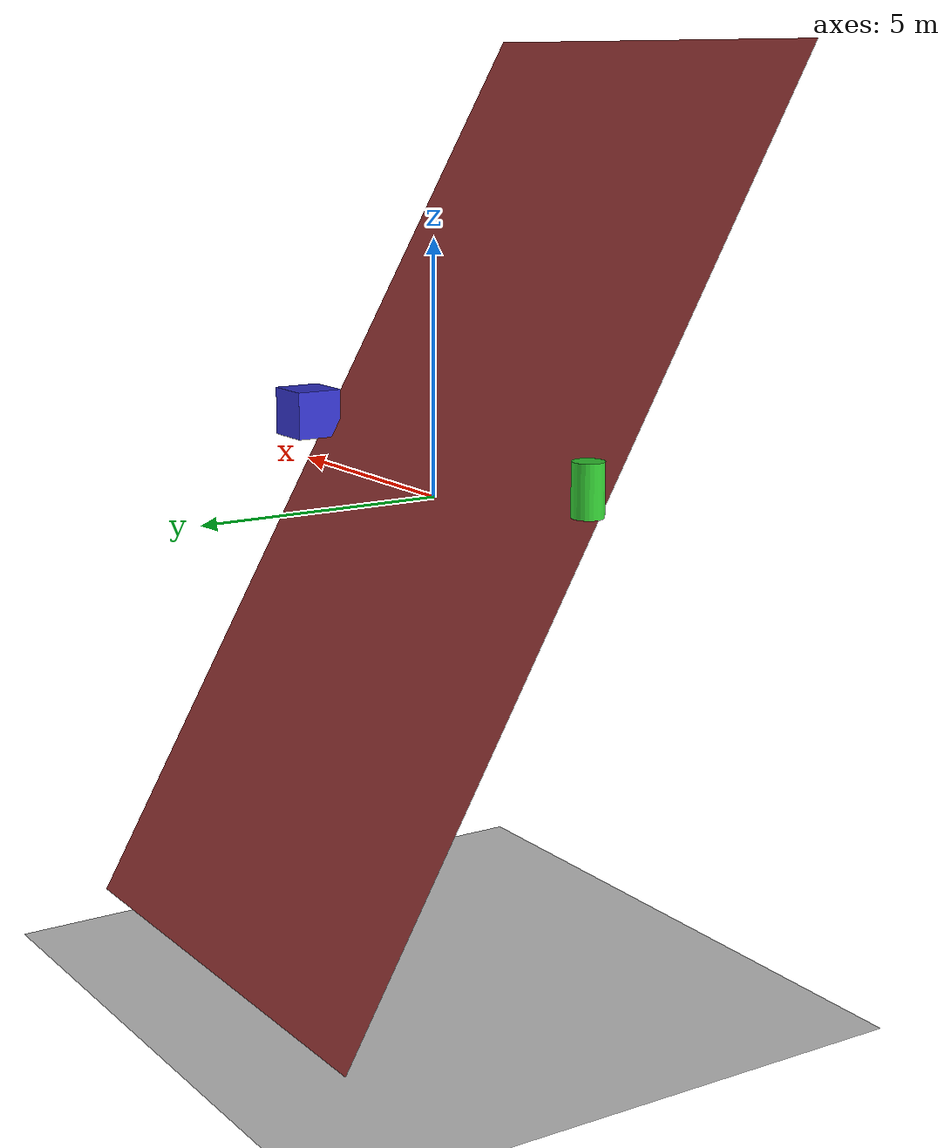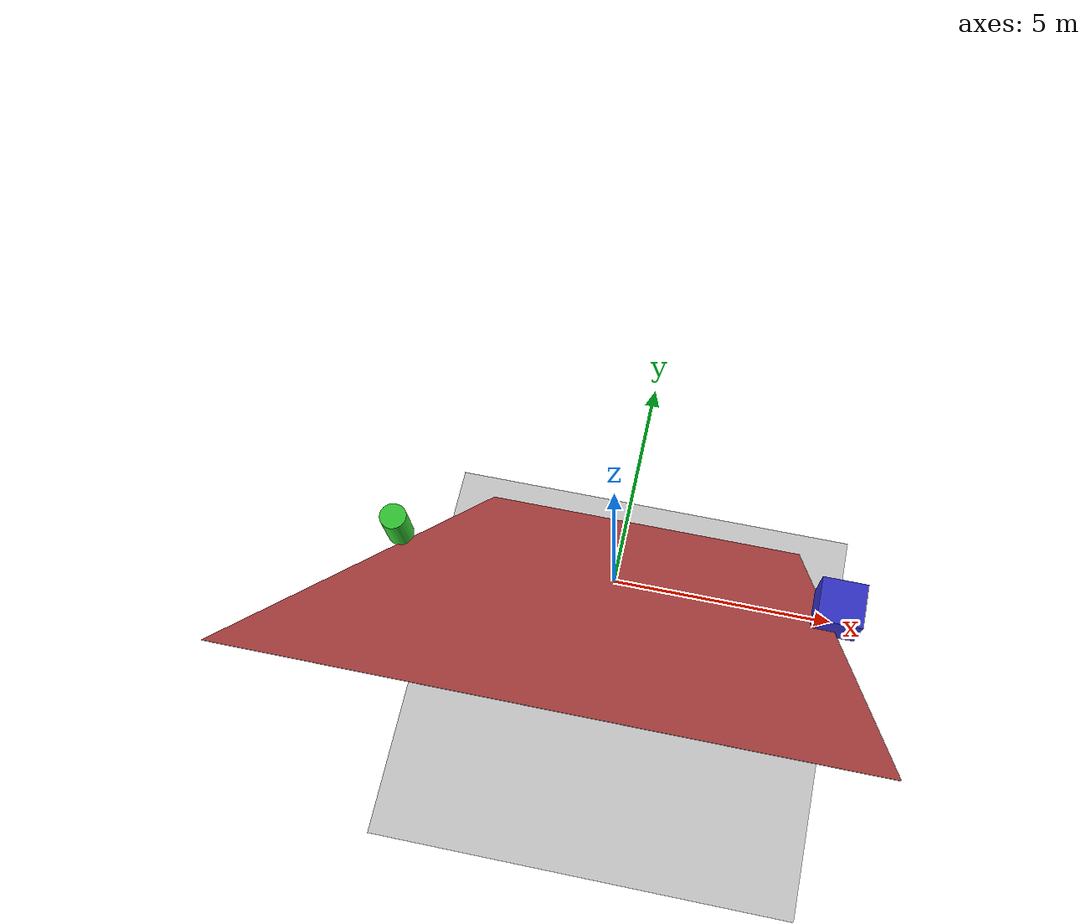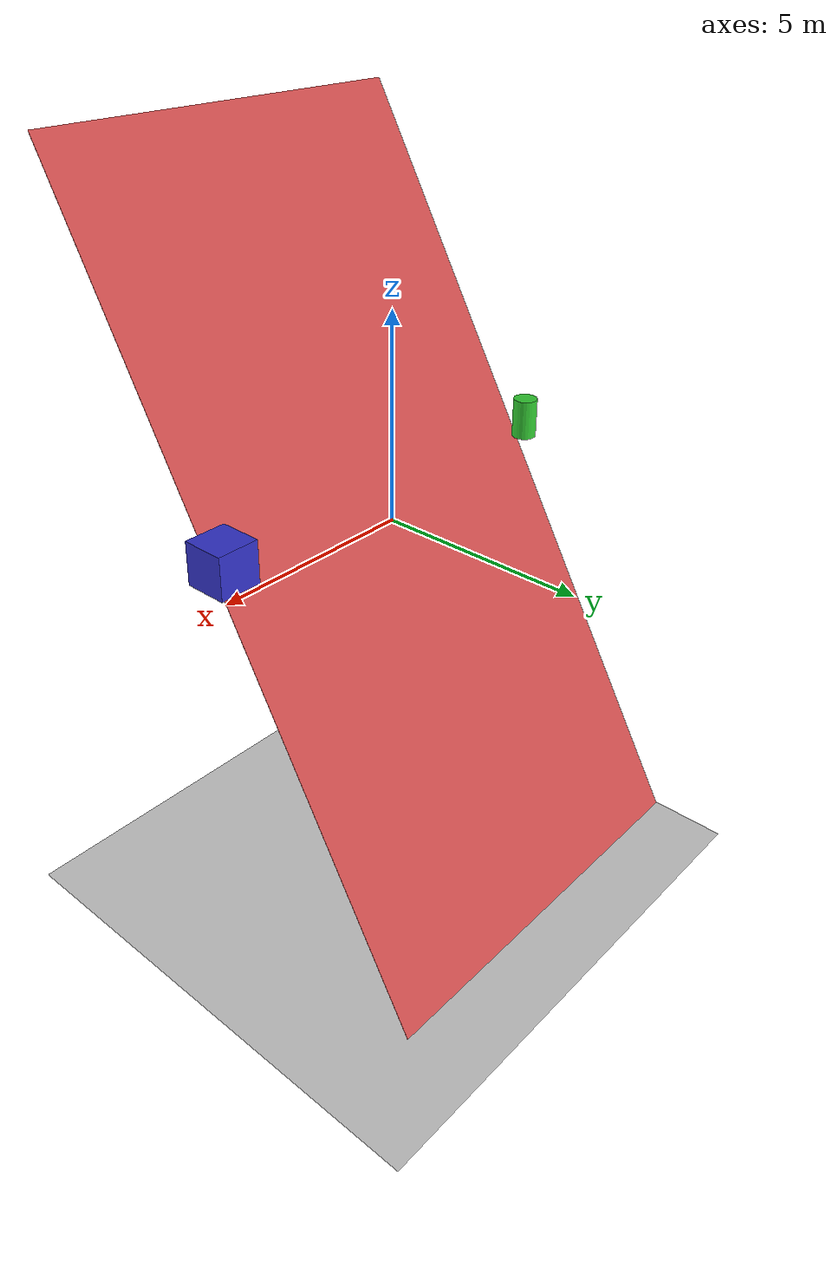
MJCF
<mujoco>
  <option gravity="0 0 -9.81"/>
  <worldbody>
    <!-- Inclined Plane -->
    <body name="incline" pos="0 0 0">
      <geom type="plane" size="5 10 0.1" rgba="0.8 0.3 0.3 1" friction="0.4 0.4 0.4" quat="0.5 0.86 0 0"/>
    </body>
    <!-- Ground Surface -->
    <body name="surface" pos="-10 0 -10">
      <geom type="plane" size="30 30 0.1" rgba="0.8 0.8 0.8 1" friction="1 1 1"/>
    </body>
    <!-- Rolling Cylinder -->
    <body name="cylinder" pos="-5 0 1">
      <geom type="cylinder" size="0.3 0.5" density="1" rgba="0.2 0.8 0.2 1"/>
      <joint name="cylinder_joint" type="free"/>
    </body>
    <!-- Sliding Block -->
    <body name="block" pos="5 0 1">
      <geom type="box" size="0.5 0.5 0.5" density="1" rgba="0.2 0.2 0.8 1" friction="0 0 0"/>
      <joint name="block_joint" type="free"/>
    </body>
  </worldbody>
</mujoco>
